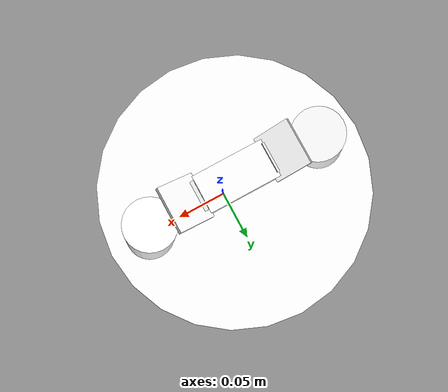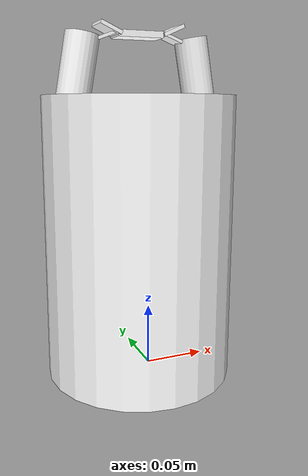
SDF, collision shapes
<?xml version='1.0' ?>
<sdf version="1.6">
  <model name="small_dry_bag_handle">
    <static>false</static>
    <link name="link">
      <inertial>
        <pose>0 0.02 0.125 0 0 0</pose>
        <mass>0.4</mass>
        <inertia>
          <ixx>0.00912747</ixx>
          <ixy>0.0</ixy>
          <ixz>0.0</ixz>
          <iyy>0.00912747</iyy>
          <iyz>0.0</iyz>
          <izz>0.00375333</izz>
        </inertia>
      </inertial>
      <visual name="visual">
        <geometry>
          <mesh>
            <uri>meshes/SmallDryBagHandle.dae</uri>
          </mesh>
        </geometry>
        <material>
          <diffuse>1.0 1.0 1.0</diffuse>
          <specular>1.0 1.0 1.0</specular>
          <pbr>
            <metal>
              <albedo_map>materials/textures/SmallDryBagHandle_Albedo.jpg</albedo_map>
              <normal_map>materials/textures/SmallDryBagHandle_Normal.jpg</normal_map>
              <roughness_map>materials/textures/SmallDryBagHandle_Roughness.png</roughness_map>
            </metal>
          </pbr>
        </material>
      </visual>

      <collision name="Cylinder001">
        <pose>-9.6187e-06 0.0238337 0.10545 0.0 0.0 0.0</pose>
        <geometry>
          <cylinder>
            <length>0.238934</length>
            <radius>0.0797048</radius>
          </cylinder>
        </geometry>
      </collision>
      <collision name="Cylinder003">
        <pose>-0.0516879 0.0238337 0.242586 0.0 0.174533 0.0</pose>
        <geometry>
          <cylinder>
            <length>0.0592556</length>
            <radius>0.013773</radius>
          </cylinder>
        </geometry>
      </collision>
      <collision name="Cylinder004">
        <pose>0.0516884 0.0238337 0.242586 0.0 -0.174533 0.0</pose>
        <geometry>
          <cylinder>
            <length>0.0592556</length>
            <radius>0.013773</radius>
          </cylinder>
        </geometry>
      </collision>
      <collision name="Box001">
        <pose>-0.00119931 0.0232488 0.272274 0.0 0.0 0.0</pose>
        <geometry>
          <box>
            <size>0.0381337 0.020146 0.005104</size>
          </box>
        </geometry>
      </collision>
      <collision name="Box002">
        <pose>-0.028 0.023248 0.271 0.0 -0.36 0.0</pose>
        <geometry>
          <box>
            <size>0.019 0.016 0.0025</size>
          </box>
        </geometry>
      </collision>
      <collision name="Box003">
        <pose>0.0265 0.023248 0.271 0.0 0.36 0.0</pose>
        <geometry>
          <box>
            <size>0.019 0.016 0.0025</size>
          </box>
        </geometry>
      </collision>
      <collision name="Box004">
        <pose>-0.0265 0.023248 0.276 0.0 0.42 0.0</pose>
        <geometry>
          <box>
            <size>0.019 0.024 0.003</size>
          </box>
        </geometry>
      </collision>
      <collision name="Box005">
        <pose>0.0265 0.023248 0.276 0.0 -0.42 0.0</pose>
        <geometry>
          <box>
            <size>0.019 0.024 0.003</size>
          </box>
        </geometry>
      </collision>
    </link>
  </model>
</sdf>
